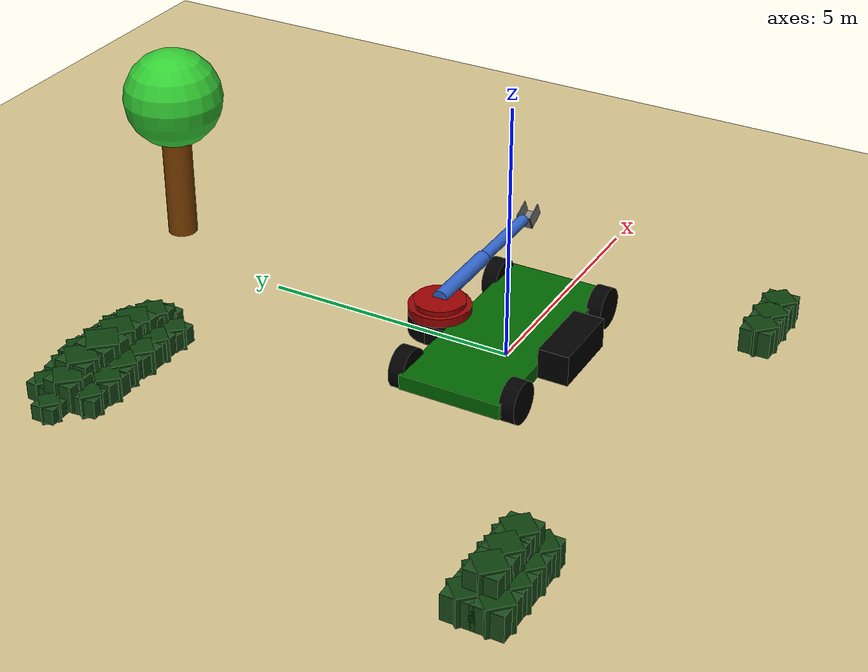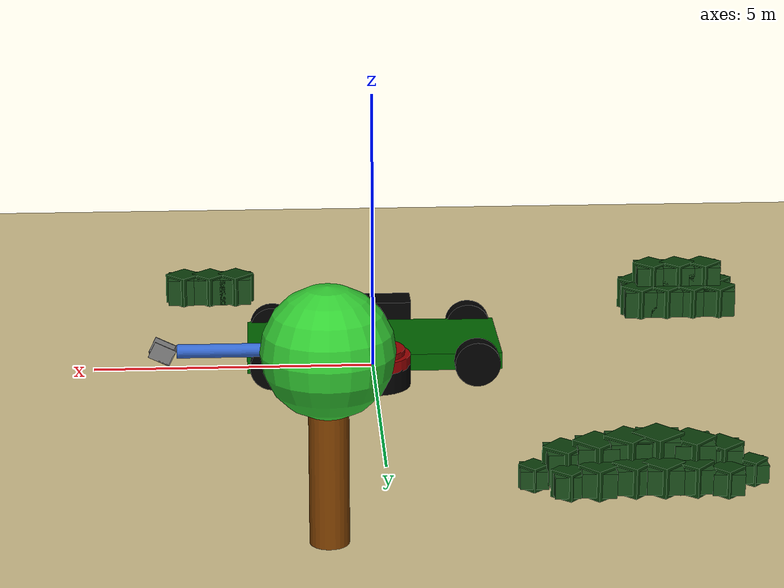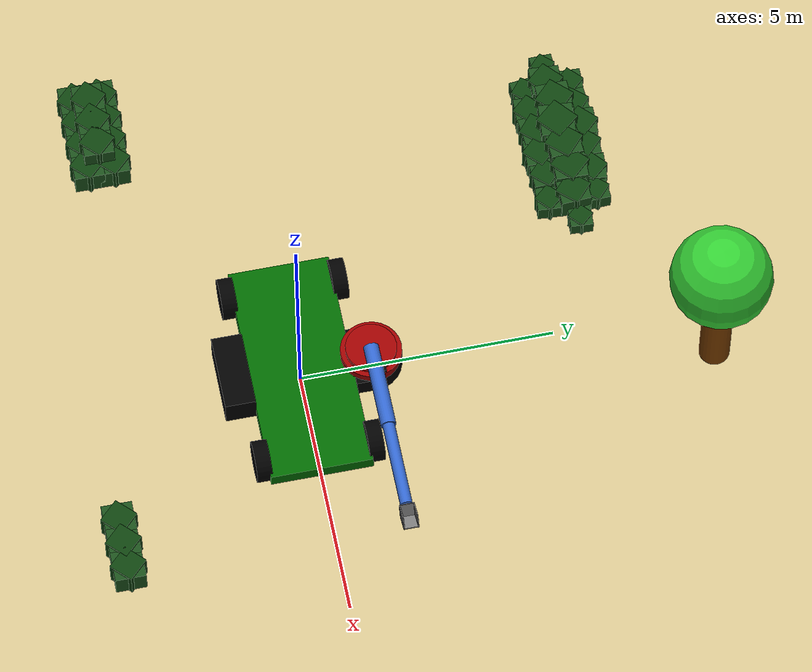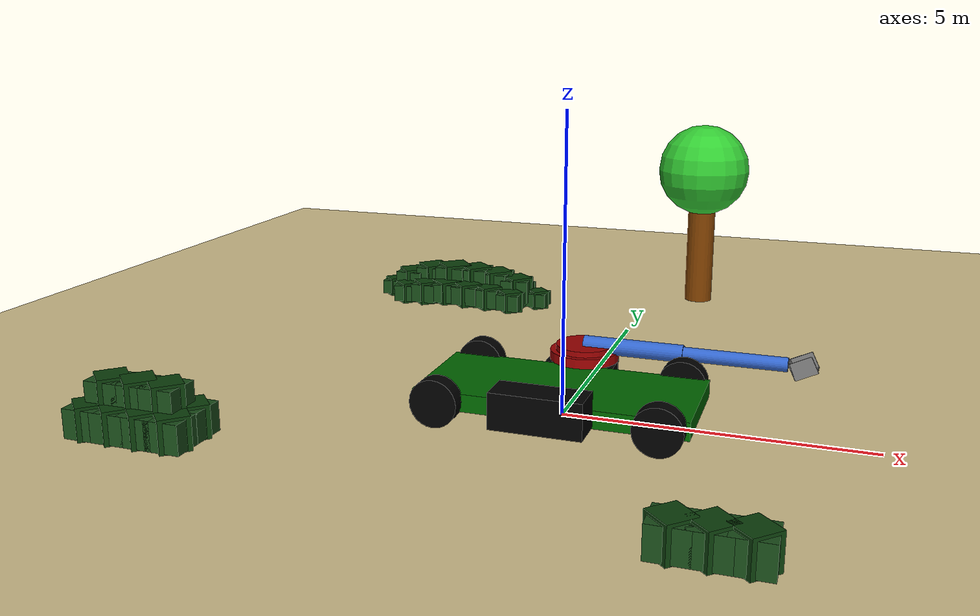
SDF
<?xml version="1.0" ?>
<sdf version="1.7">
  <world name="desert_wereld">

    <scene>
      <ambient>0.7 0.7 0.7 1.0</ambient>
      <background>0.5 0.5 0.5 1.0</background>
      <shadows>false</shadows>
    </scene>

    <light type="directional" name="zon">
      <cast_shadows>false</cast_shadows>
      <pose>0 0 10 0 0 0</pose>
      <diffuse>0.3 0.3 0.3 1</diffuse>
      <specular>0.05 0.05 0.05 1</specular>
      <attenuation>
        <range>1000</range>
        <constant>0.9</constant>
        <linear>0.01</linear>
        <quadratic>0.001</quadratic>
      </attenuation>
      <direction>-0.5 0.1 -0.9</direction>
    </light>

    <model name="zandvlakte">
      <static>true</static>
      <link name="grond_link">
        <collision name="grond_collision">
          <geometry><plane><normal>0 0 1</normal><size>100 100</size></plane></geometry>
          <surface><friction><ode><mu>0.8</mu><mu2>0.8</mu2></ode></friction></surface>
        </collision>
        <visual name="grond_visual">
          <geometry><plane><normal>0 0 1</normal><size>100 100</size></plane></geometry>
          <material>
            <ambient>0.76 0.69 0.50 1.0</ambient>
            <diffuse>0.82 0.75 0.55 1.0</diffuse>
            <specular>0.1 0.1 0.1 1.0</specular>
          </material>
        </visual>
      </link>
    </model>

    <include>
      <uri>model://greendigger</uri>
      <pose>0 0 0.0 0 0 0</pose>
    </include>

    <include>
      <uri>model://tree</uri>
      <pose>1 8 0 0 0 0</pose>
    </include>

    <include>
      <uri>model://large_shrub</uri>
      <pose>-4 6 0 0 0 0</pose>
    </include>

    <include>
      <uri>model://little_shrub</uri>
      <pose>3 -4 0 0 0 0</pose>
    </include>

    <include>
      <uri>model://clumsy_shrub</uri>
      <pose>-6 -3 0 0 0 0</pose>
    </include>

  </world>
</sdf>

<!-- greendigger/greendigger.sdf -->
<sdf version='1.7'>
  <model name='greendigger_complete'>
    <static>false</static>
    <link name='base_link'>
      <pose>0 0 0.38 0 0 0</pose>
      <inertial>
        <mass>500.0</mass>
        <inertia><ixx>50.0</ixx><ixy>0</ixy><ixz>0</ixz><iyy>50.0</iyy><iyz>0</iyz><izz>50.0</izz></inertia>
      </inertial>
      <visual name='chassis_visual'>
        <geometry><box><size>4.5 2.0 0.3</size></box></geometry>
        <material><ambient>0.0 0.35 0.0 1</ambient><diffuse>0.0 0.4 0.0 1</diffuse></material>
      </visual>
      <visual name='side_pivot_extension_base'>
        <pose>0 1.2 -0.05 0 0 0</pose>
        <geometry><box><size>1.2 0.4 0.4</size></box></geometry>
        <material><ambient>0.0 0.0 0.0 1</ambient><diffuse>0.0 0.0 0.0 1</diffuse></material>
      </visual>

      <visual name='side_pivot_extension_round'>
        <pose>0 1.4 -0.05 0 0 0</pose>
        <geometry><cylinder><radius>0.6</radius><length>0.4</length></cylinder></geometry>
        <material><ambient>0.0 0.0 0.0 1</ambient><diffuse>0.0 0.0 0.0 1</diffuse></material>
      </visual>
      <collision name='chassis_collision'>
        <geometry><box><size>4.5 2.0 0.3</size></box></geometry>
      </collision>
    </link>

    <link name='ballast_link'>
      <pose>0 -1.3 0.55 0 0 0</pose>
      <inertial>
        <mass>200.0</mass>
        <inertia><ixx>20.0</ixx><ixy>0</ixy><ixz>0</ixz><iyy>20.0</iyy><iyz>0</iyz><izz>20.0</izz></inertia>
      </inertial>
      <visual name='ballast_visual'>
        <geometry><box><size>1.5 0.6 0.6</size></box></geometry>
        <material><ambient>0.0 0.0 0.0 1</ambient></material>
      </visual>
      <collision name='ballast_collision'>
        <geometry><box><size>1.5 0.6 0.6</size></box></geometry>
      </collision>
    </link>

    <joint name='ballast_joint' type='fixed'>
      <parent>base_link</parent>
      <child>ballast_link</child>
    </joint>

    <link name='wheel_fl'>
      <pose>1.8 1.1 0.4 1.5708 0 0</pose>
      <inertial><mass>2.0</mass><inertia><ixx>0.2</ixx><ixy>0</ixy><ixz>0</ixz><iyy>0.2</iyy><iyz>0</iyz><izz>0.2</izz></inertia></inertial>
      <visual name='visual'><geometry><cylinder><radius>0.4</radius><length>0.3</length></cylinder></geometry><material><ambient>0 0 0 1</ambient></material></visual>
      <collision name='collision'>
        <geometry><cylinder><radius>0.4</radius><length>0.3</length></cylinder></geometry>
        <surface>
          <friction>
            <ode>
              <mu>1.0</mu>
              <mu2>1.0</mu2>
            </ode>
          </friction>
        </surface>
      </collision>
    </link>

    <link name='wheel_fr'>
      <pose>1.8 -1.1 0.4 1.5708 0 0</pose>
      <inertial><mass>2.0</mass><inertia><ixx>0.2</ixx><ixy>0</ixy><ixz>0</ixz><iyy>0.2</iyy><iyz>0</iyz><izz>0.2</izz></inertia></inertial>
      <visual name='visual'><geometry><cylinder><radius>0.4</radius><length>0.3</length></cylinder></geometry><material><ambient>0 0 0 1</ambient></material></visual>
      <collision name='collision'>
        <geometry><cylinder><radius>0.4</radius><length>0.3</length></cylinder></geometry>
        <surface>
          <friction>
            <ode>
              <mu>1.0</mu>
              <mu2>1.0</mu2>
            </ode>
          </friction>
        </surface>
      </collision>
    </link>

    <link name='wheel_rl'>
      <pose>-1.8 1.1 0.4 1.5708 0 0</pose>
      <inertial><mass>2.0</mass><inertia><ixx>0.2</ixx><ixy>0</ixy><ixz>0</ixz><iyy>0.2</iyy><iyz>0</iyz><izz>0.2</izz></inertia></inertial>
      <visual name='visual'><geometry><cylinder><radius>0.4</radius><length>0.3</length></cylinder></geometry><material><ambient>0 0 0 1</ambient></material></visual>
      <collision name='collision'>
        <geometry><cylinder><radius>0.4</radius><length>0.3</length></cylinder></geometry>
        <surface>
          <friction>
            <ode>
              <mu>1.0</mu>
              <mu2>1.0</mu2>
            </ode>
          </friction>
        </surface>
      </collision>
    </link>

    <link name='wheel_rr'>
      <pose>-1.8 -1.1 0.4 1.5708 0 0</pose>
      <inertial><mass>2.0</mass><inertia><ixx>0.2</ixx><ixy>0</ixy><ixz>0</ixz><iyy>0.2</iyy><iyz>0</iyz><izz>0.2</izz></inertia></inertial>
      <visual name='visual'><geometry><cylinder><radius>0.4</radius><length>0.3</length></cylinder></geometry><material><ambient>0 0 0 1</ambient></material></visual>
      <collision name='collision'>
        <geometry><cylinder><radius>0.4</radius><length>0.3</length></cylinder></geometry>
        <surface>
          <friction>
            <ode>
              <mu>1.0</mu>
              <mu2>1.0</mu2>
            </ode>
          </friction>
        </surface>
      </collision>
    </link>

    <joint name='j_fl' type='revolute'>
      <parent>base_link</parent><child>wheel_fl</child>
      <axis><xyz>0 0 1</xyz><dynamics><damping>500.0</damping><friction>500.0</friction></dynamics></axis>
    </joint>
    <joint name='j_fr' type='revolute'>
      <parent>base_link</parent><child>wheel_fr</child>
      <axis><xyz>0 0 1</xyz><dynamics><damping>500.0</damping><friction>500.0</friction></dynamics></axis>
    </joint>
    <joint name='j_rl' type='revolute'>
      <parent>base_link</parent><child>wheel_rl</child>
      <axis><xyz>0 0 1</xyz><dynamics><damping>500.0</damping><friction>500.0</friction></dynamics></axis>
    </joint>
    <joint name='j_rr' type='revolute'>
      <parent>base_link</parent><child>wheel_rr</child>
      <axis><xyz>0 0 1</xyz><dynamics><damping>500.0</damping><friction>500.0</friction></dynamics></axis>
    </joint>

    <link name='slew_disk'>
      <pose>0 1.4 0.6 0 0 0</pose>
      <inertial>
        <mass>5.0</mass>
        <inertia><ixx>0.5</ixx><ixy>0</ixy><ixz>0</ixz><iyy>0.5</iyy><iyz>0</iyz><izz>0.5</izz></inertia>
      </inertial>
      <visual name='slew_base_vis'>
        <geometry><cylinder><radius>0.6</radius><length>0.2</length></cylinder></geometry>
        <material><ambient>0.5 0.0 0.0 1</ambient><diffuse>0.6 0.0 0.0 1</diffuse></material>
      </visual>
      <visual name='slew_top_vis'>
        <pose>0 0 0.15 0 0 0</pose>
        <geometry><cylinder><radius>0.5</radius><length>0.1</length></cylinder></geometry>
        <material><ambient>0.5 0.0 0.0 1</ambient><diffuse>0.6 0.0 0.0 1</diffuse></material>
      </visual>
      <collision name='slew_collision'>
        <geometry><cylinder><radius>0.6</radius><length>0.3</length></cylinder></geometry>
      </collision>
    </link>

    <joint name='slew_joint' type='revolute'>
      <parent>base_link</parent>
      <child>slew_disk</child>
      <axis>
        <xyz>0 0 1</xyz>
        <limit><lower>-3.1415</lower><upper>3.1415</upper><effort>30000</effort><velocity>1.0</velocity></limit>
        <dynamics><damping>20.0</damping><friction>15.0</friction></dynamics>
      </axis>
    </joint>

    <link name="camera_link">
    <pose>0.5 1.56 0.75 0 0 0</pose>

    <inertial>
      <mass>0.2</mass>
      <inertia>
        <ixx>0.001</ixx>
        <iyy>0.001</iyy>
        <izz>0.001</izz>
        <ixy>0</ixy>
        <ixz>0</ixz>
        <iyz>0</iyz>
      </inertia>
    </inertial>

    <visual name="camera_visual">
      <geometry>
        <box>
          <size>0.12 0.08 0.08</size>
        </box>
      </geometry>
      <material>
        <ambient>0 0 0 1</ambient>
        <diffuse>0 0 0 1</diffuse>
      </material>
    </visual>

    <collision name="camera_collision">
      <geometry>
        <box>
          <size>0.12 0.08 0.08</size>
        </box>
      </geometry>
    </collision>

    <sensor name="camera" type="camera">
      <pose>0 0 0 0 0 0</pose>

      <update_rate>30</update_rate>

      <camera>
        <horizontal_fov>1.483</horizontal_fov>

        <image>
          <width>640</width>
          <height>480</height>
          <format>R8G8B8</format>
        </image>

        <clip>
          <near>0.1</near>
          <far>100</far>
        </clip>
      </camera>

      <always_on>true</always_on>
      <visualize>true</visualize>
    </sensor>
  </link>

  <joint name="camera_mount_joint" type="fixed">
    <parent>slew_disk</parent>
    <child>camera_link</child>
  </joint>

    <link name="arm_segment_1">
      <pose>0.865 1.4 0.8 0 1.570796 0</pose>
      <inertial>
        <mass>20.0</mass>
        <inertia><ixx>0.5</ixx><iyy>5.0</iyy><izz>5.0</izz><ixy>0</ixy><ixz>0</ixz><iyz>0</iyz></inertia>
      </inertial>
      <visual name="seg1_visual">
        <geometry><cylinder><radius>0.15</radius><length>1.73</length></cylinder></geometry>
        <material><ambient>0.1 0.2 0.5 1</ambient><diffuse>0.2 0.4 0.8 1</diffuse></material>
      </visual>
      <collision name="seg1_collision">
        <geometry><cylinder><radius>0.15</radius><length>1.73</length></cylinder></geometry>
      </collision>
    </link>

    <joint name="shoulder_joint" type="revolute">
      <parent>slew_disk</parent>
      <child>arm_segment_1</child>
      <pose>0 0 -0.865 0 0 0</pose>
      <axis>
        <xyz>0 1 0</xyz>
        <limit><lower>-1.57</lower><upper>1.57</upper><effort>5000</effort><velocity>1</velocity></limit>
      </axis>
    </joint>

    <link name="arm_segment_2">
      <pose>2.595 1.4 0.8 0 1.570796 0</pose>
      <inertial>
        <mass>15.0</mass>
        <inertia><ixx>0.4</ixx><iyy>4.0</iyy><izz>4.0</izz><ixy>0</ixy><ixz>0</ixz><iyz>0</iyz></inertia>
      </inertial>
      <visual name="seg2_visual">
        <geometry><cylinder><radius>0.12</radius><length>1.73</length></cylinder></geometry>
        <material><ambient>0.1 0.2 0.5 1</ambient><diffuse>0.2 0.4 0.8 1</diffuse></material>
      </visual>
      <collision name="seg2_collision">
        <geometry><cylinder><radius>0.12</radius><length>1.73</length></cylinder></geometry>
      </collision>
    </link>

    <joint name="elbow_joint" type="revolute">
      <parent>arm_segment_1</parent>
      <child>arm_segment_2</child>
      <pose>0 0 -0.865 0 0 0</pose>
      <axis>
        <xyz>0 1 0</xyz>
        <limit><lower>-3.1415</lower><upper>3.1415</upper><effort>2000</effort><velocity>0.5</velocity></limit>
      </axis>
    </joint>

    <link name="front_shovel_block">
      <pose>3.71 1.4 0.8 0 -0.45 0</pose>
      <inertial>
        <mass>5.0</mass>
        <inertia><ixx>0.1</ixx><iyy>0.1</iyy><izz>0.1</izz><ixy>0</ixy><ixz>0</ixz><iyz>0</iyz></inertia>
      </inertial>

      <visual name="shovel_back">
        <pose>-0.19 0 0 0 0 0</pose>
        <geometry><box><size>0.02 0.3 0.3</size></box></geometry>
        <material><ambient>0.4 0.4 0.4 1</ambient><diffuse>0.5 0.5 0.5 1</diffuse></material>
      </visual>
      <visual name="shovel_bottom">
        <pose>0.0 0 -0.14 0 0 0</pose>
        <geometry><box><size>0.38 0.3 0.02</size></box></geometry>
        <material><ambient>0.4 0.4 0.4 1</ambient><diffuse>0.5 0.5 0.5 1</diffuse></material>
      </visual>
      <visual name="shovel_side_left">
        <pose>0.0 0.14 0 0 0 0</pose>
        <geometry><box><size>0.4 0.02 0.3</size></box></geometry>
        <material><ambient>0.4 0.4 0.4 1</ambient><diffuse>0.5 0.5 0.5 1</diffuse></material>
      </visual>
      <visual name="shovel_side_right">
        <pose>0.0 -0.14 0 0 0 0</pose>
        <geometry><box><size>0.4 0.02 0.3</size></box></geometry>
        <material><ambient>0.4 0.4 0.4 1</ambient><diffuse>0.5 0.5 0.5 1</diffuse></material>
      </visual>
    </link>

    <joint name="shovel_joint" type="fixed">
      <parent>arm_segment_2</parent>
      <child>front_shovel_block</child>
      <pose>-0.25 0 0 0 0 0</pose>
    </joint>

    <plugin filename="gz-sim-joint-state-publisher-system" name="gz::sim::systems::JointStatePublisher">
      <joint_name>slew_joint</joint_name>
      <topic>slew_observer</topic>
    </plugin>
    <plugin filename="gz-sim-joint-controller-system" name="gz::sim::systems::JointController">
      <joint_name>slew_joint</joint_name>
      <topic>slew_ctrl</topic>
    </plugin>
    <plugin filename="gz-sim-joint-state-publisher-system" name="gz::sim::systems::JointStatePublisher">
      <joint_name>shoulder_joint</joint_name>
      <topic>shoulder_observer</topic>
    </plugin>
    <plugin filename="gz-sim-joint-controller-system" name="gz::sim::systems::JointController">
      <joint_name>shoulder_joint</joint_name>
      <topic>shoulder_ctrl</topic>
    </plugin>
    <plugin filename="gz-sim-joint-state-publisher-system" name="gz::sim::systems::JointStatePublisher">
      <joint_name>elbow_joint</joint_name>
      <topic>elbow_observer</topic>
    </plugin>
    <plugin filename="gz-sim-joint-controller-system" name="gz::sim::systems::JointController">
      <joint_name>elbow_joint</joint_name>
      <topic>elbow_ctrl</topic>
    </plugin>
    <plugin filename="gz-sim-sensors-system" name="gz::sim::systems::Sensors">
    </plugin>

  </model>
</sdf>

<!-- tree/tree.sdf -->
<sdf version="1.6">
  <model name="tree">
    <static>true</static>
    <link name="link">
      <pose>0 0 0 0 0 0</pose>

      <visual name="stam_visual">
        <pose>0 0 1.5 0 0 0</pose>
        <geometry>
          <cylinder>
            <radius>0.3</radius>
            <length>3</length>
          </cylinder>
        </geometry>
        <material>
          <ambient>0.4 0.2 0.0 1</ambient>
          <diffuse>0.5 0.25 0.0 1</diffuse>
        </material>
      </visual>

      <visual name="bladeren_visual">
        <pose>0 0 3 0 0 0</pose>
        <geometry>
          <sphere>
            <radius>1</radius>
          </sphere>
        </geometry>
        <material>
          <ambient>0.1 0.5 0.1 1</ambient>
          <diffuse>0.2 0.8 0.2 1</diffuse>
        </material>
      </visual>

      <collision name="collision">
        <pose>0 0 0.7 0 0 0</pose>
        <geometry>
          <cylinder>
            <radius>0.3</radius>
            <length>3</length>
          </cylinder>
        </geometry>
      </collision>

    </link>
  </model>
</sdf>

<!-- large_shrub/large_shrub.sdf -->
<sdf version="1.6">
  <model name="large_shrub">
    <static>true</static>
    <link name="link">
      <pose>0 0 0.35 0 0 0</pose>

      <visual name="b2_1"><pose>-1.22 -0.45 -0.10 0 0 0.100</pose><geometry><box><size>0.50 0.50 0.35</size></box></geometry><material><ambient>0.05 0.25 0.05 1</ambient><diffuse>0.1 0.3 0.1 1</diffuse></material><transparency>0.05</transparency></visual>
      <visual name="b2_2"><pose>-1.22 -0.45 -0.10 0 0 0.885</pose><geometry><box><size>0.40 0.40 0.45</size></box></geometry><material><ambient>0.02 0.2 0.02 1</ambient><diffuse>0.05 0.25 0.05 1</diffuse></material><transparency>0.05</transparency></visual>
      <visual name="b3_1"><pose>-0.73 -0.48 -0.05 0 0 -0.05</pose><geometry><box><size>0.55 0.55 0.40</size></box></geometry><material><ambient>0.05 0.25 0.05 1</ambient><diffuse>0.1 0.3 0.1 1</diffuse></material><transparency>0.05</transparency></visual>
      <visual name="b3_2"><pose>-0.73 -0.48 -0.05 0 0 0.735</pose><geometry><box><size>0.45 0.45 0.50</size></box></geometry><material><ambient>0.02 0.2 0.02 1</ambient><diffuse>0.05 0.25 0.05 1</diffuse></material><transparency>0.05</transparency></visual>
      <visual name="b4_1"><pose>-0.26 -0.44 -0.02 0 0 0.080</pose><geometry><box><size>0.58 0.58 0.40</size></box></geometry><material><ambient>0.05 0.25 0.05 1</ambient><diffuse>0.1 0.3 0.1 1</diffuse></material><transparency>0.05</transparency></visual>
      <visual name="b4_2"><pose>-0.26 -0.44 -0.02 0 0 0.865</pose><geometry><box><size>0.48 0.48 0.50</size></box></geometry><material><ambient>0.02 0.2 0.02 1</ambient><diffuse>0.05 0.25 0.05 1</diffuse></material><transparency>0.05</transparency></visual>
      <visual name="b5_1"><pose>0.24 -0.47 -0.03 0 0 -0.02</pose><geometry><box><size>0.58 0.58 0.40</size></box></geometry><material><ambient>0.05 0.25 0.05 1</ambient><diffuse>0.1 0.3 0.1 1</diffuse></material><transparency>0.05</transparency></visual>
      <visual name="b5_2"><pose>0.24 -0.47 -0.03 0 0 0.765</pose><geometry><box><size>0.48 0.48 0.50</size></box></geometry><material><ambient>0.02 0.2 0.02 1</ambient><diffuse>0.05 0.25 0.05 1</diffuse></material><transparency>0.05</transparency></visual>
      <visual name="b6_1"><pose>0.72 -0.45 -0.06 0 0 0.040</pose><geometry><box><size>0.55 0.55 0.40</size></box></geometry><material><ambient>0.05 0.25 0.05 1</ambient><diffuse>0.1 0.3 0.1 1</diffuse></material><transparency>0.05</transparency></visual>
      <visual name="b6_2"><pose>0.72 -0.45 -0.06 0 0 0.825</pose><geometry><box><size>0.45 0.45 0.50</size></box></geometry><material><ambient>0.02 0.2 0.02 1</ambient><diffuse>0.05 0.25 0.05 1</diffuse></material><transparency>0.05</transparency></visual>
      <visual name="b7_1"><pose>1.26 -0.49 -0.10 0 0 -0.07</pose><geometry><box><size>0.50 0.50 0.35</size></box></geometry><material><ambient>0.05 0.25 0.05 1</ambient><diffuse>0.1 0.3 0.1 1</diffuse></material><transparency>0.05</transparency></visual>
      <visual name="b7_2"><pose>1.26 -0.49 -0.10 0 0 0.715</pose><geometry><box><size>0.40 0.40 0.45</size></box></geometry><material><ambient>0.02 0.2 0.02 1</ambient><diffuse>0.05 0.25 0.05 1</diffuse></material><transparency>0.05</transparency></visual>
      <visual name="b9_1"><pose>-1.74 0.02 -0.12 0 0 0.030</pose><geometry><box><size>0.45 0.45 0.30</size></box></geometry><material><ambient>0.05 0.25 0.05 1</ambient><diffuse>0.1 0.3 0.1 1</diffuse></material><transparency>0.05</transparency></visual>
      <visual name="b9_2"><pose>-1.74 0.02 -0.12 0 0 0.815</pose><geometry><box><size>0.35 0.35 0.40</size></box></geometry><material><ambient>0.02 0.2 0.02 1</ambient><diffuse>0.05 0.25 0.05 1</diffuse></material><transparency>0.05</transparency></visual>
      <visual name="b10_1"><pose>-1.25 -0.03 0.05 0 0 -0.06</pose><geometry><box><size>0.60 0.60 0.50</size></box></geometry><material><ambient>0.05 0.25 0.05 1</ambient><diffuse>0.1 0.3 0.1 1</diffuse></material><transparency>0.05</transparency></visual>
      <visual name="b10_2"><pose>-1.25 -0.03 0.05 0 0 0.725</pose><geometry><box><size>0.50 0.50 0.60</size></box></geometry><material><ambient>0.02 0.2 0.02 1</ambient><diffuse>0.05 0.25 0.05 1</diffuse></material><transparency>0.05</transparency></visual>
      <visual name="b11_1"><pose>-0.76 0.04 0.15 0 0 0.020</pose><geometry><box><size>0.65 0.65 0.55</size></box></geometry><material><ambient>0.05 0.25 0.05 1</ambient><diffuse>0.1 0.3 0.1 1</diffuse></material><transparency>0.05</transparency></visual>
      <visual name="b11_2"><pose>-0.76 0.04 0.15 0 0 0.805</pose><geometry><box><size>0.55 0.55 0.65</size></box></geometry><material><ambient>0.02 0.2 0.02 1</ambient><diffuse>0.05 0.25 0.05 1</diffuse></material><transparency>0.05</transparency></visual>
      <visual name="b12_1"><pose>-0.23 -0.02 0.18 0 0 -0.08</pose><geometry><box><size>0.68 0.68 0.60</size></box></geometry><material><ambient>0.05 0.25 0.05 1</ambient><diffuse>0.1 0.3 0.1 1</diffuse></material><transparency>0.05</transparency></visual>
      <visual name="b12_2"><pose>-0.23 -0.02 0.18 0 0 0.705</pose><geometry><box><size>0.58 0.58 0.70</size></box></geometry><material><ambient>0.02 0.2 0.02 1</ambient><diffuse>0.05 0.25 0.05 1</diffuse></material><transparency>0.05</transparency></visual>
      <visual name="b13_1"><pose>0.25 0.01 0.16 0 0 0.050</pose><geometry><box><size>0.65 0.65 0.60</size></box></geometry><material><ambient>0.05 0.25 0.05 1</ambient><diffuse>0.1 0.3 0.1 1</diffuse></material><transparency>0.05</transparency></visual>
      <visual name="b13_2"><pose>0.25 0.01 0.16 0 0 0.835</pose><geometry><box><size>0.55 0.55 0.70</size></box></geometry><material><ambient>0.02 0.2 0.02 1</ambient><diffuse>0.05 0.25 0.05 1</diffuse></material><transparency>0.05</transparency></visual>
      <visual name="b14_1"><pose>0.74 0.03 0.12 0 0 -0.03</pose><geometry><box><size>0.65 0.65 0.55</size></box></geometry><material><ambient>0.05 0.25 0.05 1</ambient><diffuse>0.1 0.3 0.1 1</diffuse></material><transparency>0.05</transparency></visual>
      <visual name="b14_2"><pose>0.74 0.03 0.12 0 0 0.755</pose><geometry><box><size>0.55 0.55 0.65</size></box></geometry><material><ambient>0.02 0.2 0.02 1</ambient><diffuse>0.05 0.25 0.05 1</diffuse></material><transparency>0.05</transparency></visual>
      <visual name="b15_1"><pose>1.25 -0.01 0.04 0 0 0.060</pose><geometry><box><size>0.60 0.60 0.50</size></box></geometry><material><ambient>0.05 0.25 0.05 1</ambient><diffuse>0.1 0.3 0.1 1</diffuse></material><transparency>0.05</transparency></visual>
      <visual name="b15_2"><pose>1.25 -0.01 0.04 0 0 0.845</pose><geometry><box><size>0.50 0.50 0.60</size></box></geometry><material><ambient>0.02 0.2 0.02 1</ambient><diffuse>0.05 0.25 0.05 1</diffuse></material><transparency>0.05</transparency></visual>
      <visual name="b16_1"><pose>1.73 0.04 -0.14 0 0 -0.05</pose><geometry><box><size>0.45 0.45 0.30</size></box></geometry><material><ambient>0.05 0.25 0.05 1</ambient><diffuse>0.1 0.3 0.1 1</diffuse></material><transparency>0.05</transparency></visual>
      <visual name="b16_2"><pose>1.73 0.04 -0.14 0 0 0.735</pose><geometry><box><size>0.35 0.35 0.40</size></box></geometry><material><ambient>0.02 0.2 0.02 1</ambient><diffuse>0.05 0.25 0.05 1</diffuse></material><transparency>0.05</transparency></visual>
      <visual name="b18_1"><pose>-1.26 0.46 -0.10 0 0 -0.04</pose><geometry><box><size>0.50 0.50 0.35</size></box></geometry><material><ambient>0.05 0.25 0.05 1</ambient><diffuse>0.1 0.3 0.1 1</diffuse></material><transparency>0.05</transparency></visual>
      <visual name="b18_2"><pose>-1.26 0.46 -0.10 0 0 0.745</pose><geometry><box><size>0.40 0.40 0.45</size></box></geometry><material><ambient>0.02 0.2 0.02 1</ambient><diffuse>0.05 0.25 0.05 1</diffuse></material><transparency>0.05</transparency></visual>
      <visual name="b19_1"><pose>-0.74 0.43 -0.05 0 0 0.070</pose><geometry><box><size>0.55 0.55 0.40</size></box></geometry><material><ambient>0.05 0.25 0.05 1</ambient><diffuse>0.1 0.3 0.1 1</diffuse></material><transparency>0.05</transparency></visual>
      <visual name="b19_2"><pose>-0.74 0.43 -0.05 0 0 0.855</pose><geometry><box><size>0.45 0.45 0.50</size></box></geometry><material><ambient>0.02 0.2 0.02 1</ambient><diffuse>0.05 0.25 0.05 1</diffuse></material><transparency>0.05</transparency></visual>
      <visual name="b20_1"><pose>-0.25 0.48 -0.02 0 0 -0.02</pose><geometry><box><size>0.58 0.58 0.40</size></box></geometry><material><ambient>0.05 0.25 0.05 1</ambient><diffuse>0.1 0.3 0.1 1</diffuse></material><transparency>0.05</transparency></visual>
      <visual name="b20_2"><pose>-0.25 0.48 -0.02 0 0 0.765</pose><geometry><box><size>0.48 0.48 0.50</size></box></geometry><material><ambient>0.02 0.2 0.02 1</ambient><diffuse>0.05 0.25 0.05 1</diffuse></material><transparency>0.05</transparency></visual>
      <visual name="b21_1"><pose>0.22 0.44 -0.03 0 0 0.030</pose><geometry><box><size>0.58 0.58 0.40</size></box></geometry><material><ambient>0.05 0.25 0.05 1</ambient><diffuse>0.1 0.3 0.1 1</diffuse></material><transparency>0.05</transparency></visual>
      <visual name="b21_2"><pose>0.22 0.44 -0.03 0 0 0.815</pose><geometry><box><size>0.48 0.48 0.50</size></box></geometry><material><ambient>0.02 0.2 0.02 1</ambient><diffuse>0.05 0.25 0.05 1</diffuse></material><transparency>0.05</transparency></visual>
      <visual name="b22_1"><pose>0.76 0.47 -0.06 0 0 -0.08</pose><geometry><box><size>0.55 0.55 0.40</size></box></geometry><material><ambient>0.05 0.25 0.05 1</ambient><diffuse>0.1 0.3 0.1 1</diffuse></material><transparency>0.05</transparency></visual>
      <visual name="b22_2"><pose>0.76 0.47 -0.06 0 0 0.705</pose><geometry><box><size>0.45 0.45 0.50</size></box></geometry><material><ambient>0.02 0.2 0.02 1</ambient><diffuse>0.05 0.25 0.05 1</diffuse></material><transparency>0.05</transparency></visual>
      <visual name="b23_1"><pose>1.23 0.45 -0.10 0 0 0.050</pose><geometry><box><size>0.50 0.50 0.35</size></box></geometry><material><ambient>0.05 0.25 0.05 1</ambient><diffuse>0.1 0.3 0.1 1</diffuse></material><transparency>0.05</transparency></visual>
      <visual name="b23_2"><pose>1.23 0.45 -0.10 0 0 0.835</pose><geometry><box><size>0.40 0.40 0.45</size></box></geometry><material><ambient>0.02 0.2 0.02 1</ambient><diffuse>0.05 0.25 0.05 1</diffuse></material><transparency>0.05</transparency></visual>

      <collision name="collision">
        <pose>0 0 0.05 0 0 0</pose>
        <geometry>
          <box><size>3.8 1.4 0.7</size></box>
        </geometry>
      </collision>
    </link>
  </model>
</sdf>

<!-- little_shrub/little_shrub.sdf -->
<sdf version="1.6">
  <model name="little_shrub">
    <static>true</static>
    <link name="link">
      <pose>0 0 0.25 0 0 0</pose>

      <visual name="blok1_laag_1">
        <pose>-0.5 0 0 0 0 0</pose>
        <geometry><box><size>0.6 0.6 0.5</size></box></geometry>
        <material>
          <ambient>0.05 0.25 0.05 1</ambient>
          <diffuse>0.1 0.3 0.1 1</diffuse>
        </material>
        <transparency>0.05</transparency>
      </visual>
      <visual name="blok1_laag_2">
        <pose>-0.5 0 0 0 0 0.785</pose>
        <geometry><box><size>0.5 0.5 0.6</size></box></geometry>
        <material>
          <ambient>0.02 0.2 0.02 1</ambient>
          <diffuse>0.05 0.25 0.05 1</diffuse>
        </material>
        <transparency>0.05</transparency>
      </visual>

      <visual name="blok2_laag_1">
        <pose>0 0 0 0 0 0</pose>
        <geometry><box><size>0.6 0.6 0.5</size></box></geometry>
        <material>
          <ambient>0.05 0.25 0.05 1</ambient>
          <diffuse>0.1 0.3 0.1 1</diffuse>
        </material>
        <transparency>0.05</transparency>
      </visual>
      <visual name="blok2_laag_2">
        <pose>0 0 0 0 0 0.785</pose>
        <geometry><box><size>0.5 0.5 0.6</size></box></geometry>
        <material>
          <ambient>0.02 0.2 0.02 1</ambient>
          <diffuse>0.05 0.25 0.05 1</diffuse>
        </material>
        <transparency>0.05</transparency>
      </visual>

      <visual name="blok3_laag_1">
        <pose>0.5 0 0 0 0 0</pose>
        <geometry><box><size>0.6 0.6 0.5</size></box></geometry>
        <material>
          <ambient>0.05 0.25 0.05 1</ambient>
          <diffuse>0.1 0.3 0.1 1</diffuse>
        </material>
        <transparency>0.05</transparency>
      </visual>
      <visual name="blok3_laag_2">
        <pose>0.5 0 0 0 0 0.785</pose>
        <geometry><box><size>0.5 0.5 0.6</size></box></geometry>
        <material>
          <ambient>0.02 0.2 0.02 1</ambient>
          <diffuse>0.05 0.25 0.05 1</diffuse>
        </material>
        <transparency>0.05</transparency>
      </visual>

      <collision name="collision">
        <geometry>
          <box><size>1.6 0.6 0.6</size></box>
        </geometry>
      </collision>
    </link>
  </model>
</sdf>

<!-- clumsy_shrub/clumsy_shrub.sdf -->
<sdf version="1.6">
  <model name="clumsy_shrub">
    <static>true</static>
    <link name="link">
      <pose>0 0 0.25 0 0 0</pose>

      <visual name="b1_1"><pose>-0.75 -0.25 0 0 0 0</pose><geometry><box><size>0.6 0.6 0.5</size></box></geometry><material><ambient>0.05 0.25 0.05 1</ambient><diffuse>0.1 0.3 0.1 1</diffuse></material><transparency>0.05</transparency></visual>
      <visual name="b1_2"><pose>-0.75 -0.25 0 0 0 0.785</pose><geometry><box><size>0.5 0.5 0.6</size></box></geometry><material><ambient>0.02 0.2 0.02 1</ambient><diffuse>0.05 0.25 0.05 1</diffuse></material><transparency>0.05</transparency></visual>
      <visual name="b2_1"><pose>-0.25 -0.25 0 0 0 0</pose><geometry><box><size>0.6 0.6 0.5</size></box></geometry><material><ambient>0.05 0.25 0.05 1</ambient><diffuse>0.1 0.3 0.1 1</diffuse></material><transparency>0.05</transparency></visual>
      <visual name="b2_2"><pose>-0.25 -0.25 0 0 0 0.785</pose><geometry><box><size>0.5 0.5 0.6</size></box></geometry><material><ambient>0.02 0.2 0.02 1</ambient><diffuse>0.05 0.25 0.05 1</diffuse></material><transparency>0.05</transparency></visual>
      <visual name="b3_1"><pose>0.25 -0.25 0 0 0 0</pose><geometry><box><size>0.6 0.6 0.5</size></box></geometry><material><ambient>0.05 0.25 0.05 1</ambient><diffuse>0.1 0.3 0.1 1</diffuse></material><transparency>0.05</transparency></visual>
      <visual name="b3_2"><pose>0.25 -0.25 0 0 0 0.785</pose><geometry><box><size>0.5 0.5 0.6</size></box></geometry><material><ambient>0.02 0.2 0.02 1</ambient><diffuse>0.05 0.25 0.05 1</diffuse></material><transparency>0.05</transparency></visual>
      <visual name="b4_1"><pose>0.75 -0.25 0 0 0 0</pose><geometry><box><size>0.6 0.6 0.5</size></box></geometry><material><ambient>0.05 0.25 0.05 1</ambient><diffuse>0.1 0.3 0.1 1</diffuse></material><transparency>0.05</transparency></visual>
      <visual name="b4_2"><pose>0.75 -0.25 0 0 0 0.785</pose><geometry><box><size>0.5 0.5 0.6</size></box></geometry><material><ambient>0.02 0.2 0.02 1</ambient><diffuse>0.05 0.25 0.05 1</diffuse></material><transparency>0.05</transparency></visual>

      <visual name="b5_1"><pose>-0.75 0.25 0 0 0 0</pose><geometry><box><size>0.6 0.6 0.5</size></box></geometry><material><ambient>0.05 0.25 0.05 1</ambient><diffuse>0.1 0.3 0.1 1</diffuse></material><transparency>0.05</transparency></visual>
      <visual name="b5_2"><pose>-0.75 0.25 0 0 0 0.785</pose><geometry><box><size>0.5 0.5 0.6</size></box></geometry><material><ambient>0.02 0.2 0.02 1</ambient><diffuse>0.05 0.25 0.05 1</diffuse></material><transparency>0.05</transparency></visual>
      <visual name="b6_1"><pose>-0.25 0.25 0 0 0 0</pose><geometry><box><size>0.6 0.6 0.5</size></box></geometry><material><ambient>0.05 0.25 0.05 1</ambient><diffuse>0.1 0.3 0.1 1</diffuse></material><transparency>0.05</transparency></visual>
      <visual name="b6_2"><pose>-0.25 0.25 0 0 0 0.785</pose><geometry><box><size>0.5 0.5 0.6</size></box></geometry><material><ambient>0.02 0.2 0.02 1</ambient><diffuse>0.05 0.25 0.05 1</diffuse></material><transparency>0.05</transparency></visual>
      <visual name="b7_1"><pose>0.25 0.25 0 0 0 0</pose><geometry><box><size>0.6 0.6 0.5</size></box></geometry><material><ambient>0.05 0.25 0.05 1</ambient><diffuse>0.1 0.3 0.1 1</diffuse></material><transparency>0.05</transparency></visual>
      <visual name="b7_2"><pose>0.25 0.25 0 0 0 0.785</pose><geometry><box><size>0.5 0.5 0.6</size></box></geometry><material><ambient>0.02 0.2 0.02 1</ambient><diffuse>0.05 0.25 0.05 1</diffuse></material><transparency>0.05</transparency></visual>
      <visual name="b8_1"><pose>0.75 0.25 0 0 0 0</pose><geometry><box><size>0.6 0.6 0.5</size></box></geometry><material><ambient>0.05 0.25 0.05 1</ambient><diffuse>0.1 0.3 0.1 1</diffuse></material><transparency>0.05</transparency></visual>
      <visual name="b8_2"><pose>0.75 0.25 0 0 0 0.785</pose><geometry><box><size>0.5 0.5 0.6</size></box></geometry><material><ambient>0.02 0.2 0.02 1</ambient><diffuse>0.05 0.25 0.05 1</diffuse></material><transparency>0.05</transparency></visual>

      <visual name="top1_1"><pose>-0.5 0 0.4 0 0 0</pose><geometry><box><size>0.6 0.6 0.5</size></box></geometry><material><ambient>0.05 0.25 0.05 1</ambient><diffuse>0.1 0.3 0.1 1</diffuse></material><transparency>0.05</transparency></visual>
      <visual name="top1_2"><pose>-0.5 0 0.4 0 0 0.785</pose><geometry><box><size>0.5 0.5 0.6</size></box></geometry><material><ambient>0.02 0.2 0.02 1</ambient><diffuse>0.05 0.25 0.05 1</diffuse></material><transparency>0.05</transparency></visual>
      <visual name="top2_1"><pose>0 0 0.4 0 0 0</pose><geometry><box><size>0.6 0.6 0.5</size></box></geometry><material><ambient>0.05 0.25 0.05 1</ambient><diffuse>0.1 0.3 0.1 1</diffuse></material><transparency>0.05</transparency></visual>
      <visual name="top2_2"><pose>0 0 0.4 0 0 0.785</pose><geometry><box><size>0.5 0.5 0.6</size></box></geometry><material><ambient>0.02 0.2 0.02 1</ambient><diffuse>0.05 0.25 0.05 1</diffuse></material><transparency>0.05</transparency></visual>
      <visual name="top3_1"><pose>0.5 0 0.4 0 0 0</pose><geometry><box><size>0.6 0.6 0.5</size></box></geometry><material><ambient>0.05 0.25 0.05 1</ambient><diffuse>0.1 0.3 0.1 1</diffuse></material><transparency>0.05</transparency></visual>
      <visual name="top3_2"><pose>0.5 0 0.4 0 0 0.785</pose><geometry><box><size>0.5 0.5 0.6</size></box></geometry><material><ambient>0.02 0.2 0.02 1</ambient><diffuse>0.05 0.25 0.05 1</diffuse></material><transparency>0.05</transparency></visual>

      <collision name="collision">
        <pose>0 0 0.2 0 0 0</pose>
        <geometry>
          <box><size>2.1 1.1 0.9</size></box>
        </geometry>
      </collision>
    </link>
  </model>
</sdf>
